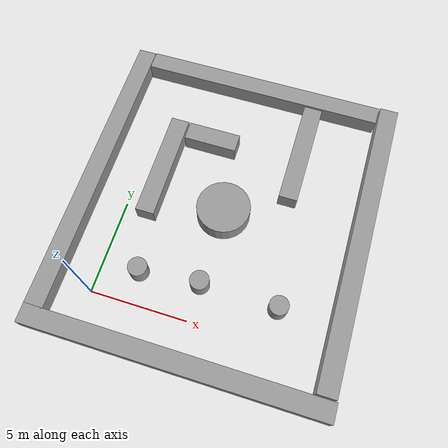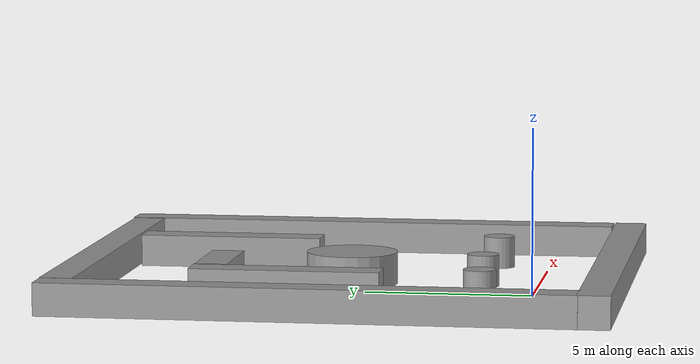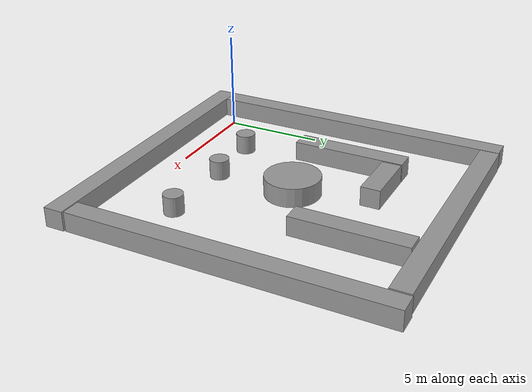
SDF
<?xml version='1.0'?>
<sdf version='1.6'>
  <model name='unit_box.world'>
    <link name='link'>
      <inertial>
        <mass>15.7158</mass>
        <inertia>
          <ixx>2.6193</ixx>
          <ixy>0</ixy>
          <ixz>0</ixz>
          <iyy>318.402</iyy>
          <iyz>0</iyz>
          <izz>318.402</izz>
        </inertia>
        <pose frame=''>0.01 0.01 0 0 -0 0</pose>
      </inertial>
      <self_collide>0</self_collide>
      <enable_wind>0</enable_wind>
      <kinematic>0</kinematic>
      <pose frame=''>4.98854 -2.03239 0 0 -0 0</pose>
      <gravity>1</gravity>
      <visual name='visual'>
        <geometry>
          <box>
            <size>15.5602 1 1</size>
          </box>
        </geometry>
        <material>
          <script>
            <name>Gazebo/Grey</name>
            <uri>file://media/materials/scripts/gazebo.material</uri>
          </script>
          <shader type='vertex'>
            <normal_map>__default__</normal_map>
          </shader>
          <ambient>0.3 0.3 0.3 1</ambient>
          <diffuse>0.7 0.7 0.7 1</diffuse>
          <specular>0.01 0.01 0.01 1</specular>
          <emissive>0 0 0 1</emissive>
        </material>
        <pose frame=''>0 0 0 0 -0 0</pose>
        <transparency>0</transparency>
        <cast_shadows>1</cast_shadows>
      </visual>
      <collision name='collision'>
        <laser_retro>0</laser_retro>
        <max_contacts>10</max_contacts>
        <pose frame=''>0 0 0 0 -0 0</pose>
        <geometry>
          <box>
            <size>15.5602 1 1</size>
          </box>
        </geometry>
        <surface>
          <friction>
            <ode>
              <mu>1</mu>
              <mu2>1</mu2>
              <fdir1>0 0 0</fdir1>
              <slip1>0</slip1>
              <slip2>0</slip2>
            </ode>
            <torsional>
              <coefficient>1</coefficient>
              <patch_radius>0</patch_radius>
              <surface_radius>0</surface_radius>
              <use_patch_radius>1</use_patch_radius>
              <ode>
                <slip>0</slip>
              </ode>
            </torsional>
          </friction>
          <bounce>
            <restitution_coefficient>0</restitution_coefficient>
            <threshold>1e+06</threshold>
          </bounce>
          <contact>
            <collide_without_contact>0</collide_without_contact>
            <collide_without_contact_bitmask>1</collide_without_contact_bitmask>
            <collide_bitmask>1</collide_bitmask>
            <ode>
              <soft_cfm>0</soft_cfm>
              <soft_erp>0.2</soft_erp>
              <kp>1e+13</kp>
              <kd>1</kd>
              <max_vel>0.01</max_vel>
              <min_depth>0</min_depth>
            </ode>
            <bullet>
              <split_impulse>1</split_impulse>
              <split_impulse_penetration_threshold>-0.01</split_impulse_penetration_threshold>
              <soft_cfm>0</soft_cfm>
              <soft_erp>0.2</soft_erp>
              <kp>1e+13</kp>
              <kd>1</kd>
            </bullet>
          </contact>
        </surface>
      </collision>
    </link>
    <link name='link_1'>
      <inertial>
        <mass>16.0639</mass>
        <inertia>
          <ixx>346.777</ixx>
          <ixy>0</ixy>
          <ixz>0</ixz>
          <iyy>2.67731</iyy>
          <iyz>0</iyz>
          <izz>346.777</izz>
        </inertia>
        <pose frame=''>0 0 0 0 -0 0</pose>
      </inertial>
      <pose frame=''>12.2228 6.56839 -0 0 -0 0</pose>
      <self_collide>0</self_collide>
      <enable_wind>0</enable_wind>
      <kinematic>0</kinematic>
      <visual name='visual'>
        <pose frame=''>0 0 0 0 -0 0</pose>
        <geometry>
          <box>
            <size>1 16.0639 1</size>
          </box>
        </geometry>
        <material>
          <lighting>1</lighting>
          <script>
            <uri>file://media/materials/scripts/gazebo.material</uri>
            <name>Gazebo/Grey</name>
          </script>
        </material>
        <transparency>0</transparency>
        <cast_shadows>1</cast_shadows>
      </visual>
      <collision name='collision'>
        <laser_retro>0</laser_retro>
        <max_contacts>10</max_contacts>
        <pose frame=''>0 0 0 0 -0 0</pose>
        <geometry>
          <box>
            <size>1 16.0639 1</size>
          </box>
        </geometry>
        <surface>
          <friction>
            <ode>
              <mu>1</mu>
              <mu2>1</mu2>
              <fdir1>0 0 0</fdir1>
              <slip1>0</slip1>
              <slip2>0</slip2>
            </ode>
            <torsional>
              <coefficient>1</coefficient>
              <patch_radius>0</patch_radius>
              <surface_radius>0</surface_radius>
              <use_patch_radius>1</use_patch_radius>
              <ode>
                <slip>0</slip>
              </ode>
            </torsional>
          </friction>
          <bounce>
            <restitution_coefficient>0</restitution_coefficient>
            <threshold>1e+06</threshold>
          </bounce>
          <contact>
            <collide_without_contact>0</collide_without_contact>
            <collide_without_contact_bitmask>1</collide_without_contact_bitmask>
            <collide_bitmask>1</collide_bitmask>
            <ode>
              <soft_cfm>0</soft_cfm>
              <soft_erp>0.2</soft_erp>
              <kp>1e+13</kp>
              <kd>1</kd>
              <max_vel>0.01</max_vel>
              <min_depth>0</min_depth>
            </ode>
            <bullet>
              <split_impulse>1</split_impulse>
              <split_impulse_penetration_threshold>-0.01</split_impulse_penetration_threshold>
              <soft_cfm>0</soft_cfm>
              <soft_erp>0.2</soft_erp>
              <kp>1e+13</kp>
              <kd>1</kd>
            </bullet>
          </contact>
        </surface>
      </collision>
    </link>
    <link name='link_1_clone'>
      <inertial>
        <mass>16.0639</mass>
        <inertia>
          <ixx>346.777</ixx>
          <ixy>0</ixy>
          <ixz>0</ixz>
          <iyy>2.67731</iyy>
          <iyz>0</iyz>
          <izz>346.777</izz>
        </inertia>
        <pose frame=''>0 0 0 0 -0 0</pose>
      </inertial>
      <pose frame=''>-2.2972 6.45676 -0 0 -0 0</pose>
      <self_collide>0</self_collide>
      <enable_wind>0</enable_wind>
      <kinematic>0</kinematic>
      <visual name='visual'>
        <pose frame=''>0 0 0 0 -0 0</pose>
        <geometry>
          <box>
            <size>1 16.0639 1</size>
          </box>
        </geometry>
        <material>
          <lighting>1</lighting>
          <script>
            <uri>file://media/materials/scripts/gazebo.material</uri>
            <name>Gazebo/Grey</name>
          </script>
          <shader type='pixel'/>
        </material>
        <transparency>0</transparency>
        <cast_shadows>1</cast_shadows>
      </visual>
      <collision name='collision'>
        <laser_retro>0</laser_retro>
        <max_contacts>10</max_contacts>
        <pose frame=''>0 0 0 0 -0 0</pose>
        <geometry>
          <box>
            <size>1 16.0639 1</size>
          </box>
        </geometry>
        <surface>
          <friction>
            <ode>
              <mu>1</mu>
              <mu2>1</mu2>
              <fdir1>0 0 0</fdir1>
              <slip1>0</slip1>
              <slip2>0</slip2>
            </ode>
            <torsional>
              <coefficient>1</coefficient>
              <patch_radius>0</patch_radius>
              <surface_radius>0</surface_radius>
              <use_patch_radius>1</use_patch_radius>
              <ode>
                <slip>0</slip>
              </ode>
            </torsional>
          </friction>
          <bounce>
            <restitution_coefficient>0</restitution_coefficient>
            <threshold>1e+06</threshold>
          </bounce>
          <contact>
            <collide_without_contact>0</collide_without_contact>
            <collide_without_contact_bitmask>1</collide_without_contact_bitmask>
            <collide_bitmask>1</collide_bitmask>
            <ode>
              <soft_cfm>0</soft_cfm>
              <soft_erp>0.2</soft_erp>
              <kp>1e+13</kp>
              <kd>1</kd>
              <max_vel>0.01</max_vel>
              <min_depth>0</min_depth>
            </ode>
            <bullet>
              <split_impulse>1</split_impulse>
              <split_impulse_penetration_threshold>-0.01</split_impulse_penetration_threshold>
              <soft_cfm>0</soft_cfm>
              <soft_erp>0.2</soft_erp>
              <kp>1e+13</kp>
              <kd>1</kd>
            </bullet>
          </contact>
        </surface>
      </collision>
    </link>
    <link name='link_1_clone_0'>
      <inertial>
        <mass>13.4186</mass>
        <inertia>
          <ixx>202.463</ixx>
          <ixy>0</ixy>
          <ixz>0</ixz>
          <iyy>2.23643</iyy>
          <iyz>0</iyz>
          <izz>202.463</izz>
        </inertia>
        <pose frame=''>0 0 0 0 -0 0</pose>
      </inertial>
      <pose frame=''>4.93078 14.0327 -0 -0 -0 -1.56924</pose>
      <self_collide>0</self_collide>
      <enable_wind>0</enable_wind>
      <kinematic>0</kinematic>
      <visual name='visual'>
        <pose frame=''>0 0 0 0 -0 0</pose>
        <geometry>
          <box>
            <size>1 13.4186 1</size>
          </box>
        </geometry>
        <material>
          <lighting>1</lighting>
          <script>
            <uri>file://media/materials/scripts/gazebo.material</uri>
            <name>Gazebo/Grey</name>
          </script>
          <shader type='pixel'/>
        </material>
        <transparency>0</transparency>
        <cast_shadows>1</cast_shadows>
      </visual>
      <collision name='collision'>
        <laser_retro>0</laser_retro>
        <max_contacts>10</max_contacts>
        <pose frame=''>0 0 0 0 -0 0</pose>
        <geometry>
          <box>
            <size>1 13.4186 1</size>
          </box>
        </geometry>
        <surface>
          <friction>
            <ode>
              <mu>1</mu>
              <mu2>1</mu2>
              <fdir1>0 0 0</fdir1>
              <slip1>0</slip1>
              <slip2>0</slip2>
            </ode>
            <torsional>
              <coefficient>1</coefficient>
              <patch_radius>0</patch_radius>
              <surface_radius>0</surface_radius>
              <use_patch_radius>1</use_patch_radius>
              <ode>
                <slip>0</slip>
              </ode>
            </torsional>
          </friction>
          <bounce>
            <restitution_coefficient>0</restitution_coefficient>
            <threshold>1e+06</threshold>
          </bounce>
          <contact>
            <collide_without_contact>0</collide_without_contact>
            <collide_without_contact_bitmask>1</collide_without_contact_bitmask>
            <collide_bitmask>1</collide_bitmask>
            <ode>
              <soft_cfm>0</soft_cfm>
              <soft_erp>0.2</soft_erp>
              <kp>1e+13</kp>
              <kd>1</kd>
              <max_vel>0.01</max_vel>
              <min_depth>0</min_depth>
            </ode>
            <bullet>
              <split_impulse>1</split_impulse>
              <split_impulse_penetration_threshold>-0.01</split_impulse_penetration_threshold>
              <soft_cfm>0</soft_cfm>
              <soft_erp>0.2</soft_erp>
              <kp>1e+13</kp>
              <kd>1</kd>
            </bullet>
          </contact>
        </surface>
      </collision>
    </link>
    <link name='link_2'>
      <inertial>
        <mass>1</mass>
        <inertia>
          <ixx>0.145833</ixx>
          <ixy>0</ixy>
          <ixz>0</ixz>
          <iyy>0.145833</iyy>
          <iyz>0</iyz>
          <izz>0.125</izz>
        </inertia>
      </inertial>
      <pose frame=''>1.82894 1.77618 -0 0 -0 0</pose>
      <self_collide>0</self_collide>
      <enable_wind>0</enable_wind>
      <kinematic>0</kinematic>
      <visual name='visual'>
        <pose frame=''>0 0 0 0 -0 0</pose>
        <geometry>
          <cylinder>
            <radius>0.5</radius>
            <length>1</length>
          </cylinder>
        </geometry>
        <material>
          <lighting>1</lighting>
          <script>
            <uri>file://media/materials/scripts/gazebo.material</uri>
            <name>Gazebo/Grey</name>
          </script>
        </material>
        <transparency>0</transparency>
        <cast_shadows>1</cast_shadows>
      </visual>
      <collision name='collision'>
        <laser_retro>0</laser_retro>
        <max_contacts>10</max_contacts>
        <pose frame=''>0 0 0 0 -0 0</pose>
        <geometry>
          <cylinder>
            <radius>0.5</radius>
            <length>1</length>
          </cylinder>
        </geometry>
        <surface>
          <friction>
            <ode>
              <mu>1</mu>
              <mu2>1</mu2>
              <fdir1>0 0 0</fdir1>
              <slip1>0</slip1>
              <slip2>0</slip2>
            </ode>
            <torsional>
              <coefficient>1</coefficient>
              <patch_radius>0</patch_radius>
              <surface_radius>0</surface_radius>
              <use_patch_radius>1</use_patch_radius>
              <ode>
                <slip>0</slip>
              </ode>
            </torsional>
          </friction>
          <bounce>
            <restitution_coefficient>0</restitution_coefficient>
            <threshold>1e+06</threshold>
          </bounce>
          <contact>
            <collide_without_contact>0</collide_without_contact>
            <collide_without_contact_bitmask>1</collide_without_contact_bitmask>
            <collide_bitmask>1</collide_bitmask>
            <ode>
              <soft_cfm>0</soft_cfm>
              <soft_erp>0.2</soft_erp>
              <kp>1e+13</kp>
              <kd>1</kd>
              <max_vel>0.01</max_vel>
              <min_depth>0</min_depth>
            </ode>
            <bullet>
              <split_impulse>1</split_impulse>
              <split_impulse_penetration_threshold>-0.01</split_impulse_penetration_threshold>
              <soft_cfm>0</soft_cfm>
              <soft_erp>0.2</soft_erp>
              <kp>1e+13</kp>
              <kd>1</kd>
            </bullet>
          </contact>
        </surface>
      </collision>
    </link>
    <link name='link_2_clone'>
      <inertial>
        <mass>1</mass>
        <inertia>
          <ixx>0.145833</ixx>
          <ixy>0</ixy>
          <ixz>0</ixz>
          <iyy>0.145833</iyy>
          <iyz>0</iyz>
          <izz>0.125</izz>
        </inertia>
      </inertial>
      <pose frame=''>5.0065 2.03016 -0 0 -0 0</pose>
      <self_collide>0</self_collide>
      <enable_wind>0</enable_wind>
      <kinematic>0</kinematic>
      <visual name='visual'>
        <pose frame=''>0 0 0 0 -0 0</pose>
        <geometry>
          <cylinder>
            <radius>0.5</radius>
            <length>1</length>
          </cylinder>
        </geometry>
        <material>
          <lighting>1</lighting>
          <script>
            <uri>file://media/materials/scripts/gazebo.material</uri>
            <name>Gazebo/Grey</name>
          </script>
          <shader type='pixel'/>
        </material>
        <transparency>0</transparency>
        <cast_shadows>1</cast_shadows>
      </visual>
      <collision name='collision'>
        <laser_retro>0</laser_retro>
        <max_contacts>10</max_contacts>
        <pose frame=''>0 0 0 0 -0 0</pose>
        <geometry>
          <cylinder>
            <radius>0.5</radius>
            <length>1</length>
          </cylinder>
        </geometry>
        <surface>
          <friction>
            <ode>
              <mu>1</mu>
              <mu2>1</mu2>
              <fdir1>0 0 0</fdir1>
              <slip1>0</slip1>
              <slip2>0</slip2>
            </ode>
            <torsional>
              <coefficient>1</coefficient>
              <patch_radius>0</patch_radius>
              <surface_radius>0</surface_radius>
              <use_patch_radius>1</use_patch_radius>
              <ode>
                <slip>0</slip>
              </ode>
            </torsional>
          </friction>
          <bounce>
            <restitution_coefficient>0</restitution_coefficient>
            <threshold>1e+06</threshold>
          </bounce>
          <contact>
            <collide_without_contact>0</collide_without_contact>
            <collide_without_contact_bitmask>1</collide_without_contact_bitmask>
            <collide_bitmask>1</collide_bitmask>
            <ode>
              <soft_cfm>0</soft_cfm>
              <soft_erp>0.2</soft_erp>
              <kp>1e+13</kp>
              <kd>1</kd>
              <max_vel>0.01</max_vel>
              <min_depth>0</min_depth>
            </ode>
            <bullet>
              <split_impulse>1</split_impulse>
              <split_impulse_penetration_threshold>-0.01</split_impulse_penetration_threshold>
              <soft_cfm>0</soft_cfm>
              <soft_erp>0.2</soft_erp>
              <kp>1e+13</kp>
              <kd>1</kd>
            </bullet>
          </contact>
        </surface>
      </collision>
    </link>
    <link name='link_2_clone_0'>
      <inertial>
        <mass>1</mass>
        <inertia>
          <ixx>0.145833</ixx>
          <ixy>0</ixy>
          <ixz>0</ixz>
          <iyy>0.145833</iyy>
          <iyz>0</iyz>
          <izz>0.125</izz>
        </inertia>
      </inertial>
      <pose frame=''>9.09614 1.96691 -0 0 -0 0</pose>
      <self_collide>0</self_collide>
      <enable_wind>0</enable_wind>
      <kinematic>0</kinematic>
      <visual name='visual'>
        <pose frame=''>0 0 0 0 -0 0</pose>
        <geometry>
          <cylinder>
            <radius>0.5</radius>
            <length>1</length>
          </cylinder>
        </geometry>
        <material>
          <lighting>1</lighting>
          <script>
            <uri>file://media/materials/scripts/gazebo.material</uri>
            <name>Gazebo/Grey</name>
          </script>
          <shader type='pixel'/>
        </material>
        <transparency>0</transparency>
        <cast_shadows>1</cast_shadows>
      </visual>
      <collision name='collision'>
        <laser_retro>0</laser_retro>
        <max_contacts>10</max_contacts>
        <pose frame=''>0 0 0 0 -0 0</pose>
        <geometry>
          <cylinder>
            <radius>0.5</radius>
            <length>1</length>
          </cylinder>
        </geometry>
        <surface>
          <friction>
            <ode>
              <mu>1</mu>
              <mu2>1</mu2>
              <fdir1>0 0 0</fdir1>
              <slip1>0</slip1>
              <slip2>0</slip2>
            </ode>
            <torsional>
              <coefficient>1</coefficient>
              <patch_radius>0</patch_radius>
              <surface_radius>0</surface_radius>
              <use_patch_radius>1</use_patch_radius>
              <ode>
                <slip>0</slip>
              </ode>
            </torsional>
          </friction>
          <bounce>
            <restitution_coefficient>0</restitution_coefficient>
            <threshold>1e+06</threshold>
          </bounce>
          <contact>
            <collide_without_contact>0</collide_without_contact>
            <collide_without_contact_bitmask>1</collide_without_contact_bitmask>
            <collide_bitmask>1</collide_bitmask>
            <ode>
              <soft_cfm>0</soft_cfm>
              <soft_erp>0.2</soft_erp>
              <kp>1e+13</kp>
              <kd>1</kd>
              <max_vel>0.01</max_vel>
              <min_depth>0</min_depth>
            </ode>
            <bullet>
              <split_impulse>1</split_impulse>
              <split_impulse_penetration_threshold>-0.01</split_impulse_penetration_threshold>
              <soft_cfm>0</soft_cfm>
              <soft_erp>0.2</soft_erp>
              <kp>1e+13</kp>
              <kd>1</kd>
            </bullet>
          </contact>
        </surface>
      </collision>
    </link>
    <link name='link_4'>
      <inertial>
        <mass>5.83569</mass>
        <inertia>
          <ixx>17.0476</ixx>
          <ixy>0</ixy>
          <ixz>0</ixz>
          <iyy>0.972615</iyy>
          <iyz>0</iyz>
          <izz>17.0476</izz>
        </inertia>
        <pose frame=''>0 0 0 0 -0 0</pose>
      </inertial>
      <pose frame=''>8.08336 10.5206 -0 0 -0 0</pose>
      <self_collide>0</self_collide>
      <enable_wind>0</enable_wind>
      <kinematic>0</kinematic>
      <visual name='visual'>
        <pose frame=''>0 0 0 0 -0 0</pose>
        <geometry>
          <box>
            <size>1 5.83569 1</size>
          </box>
        </geometry>
        <material>
          <lighting>1</lighting>
          <script>
            <uri>file://media/materials/scripts/gazebo.material</uri>
            <name>Gazebo/Grey</name>
          </script>
        </material>
        <transparency>0</transparency>
        <cast_shadows>1</cast_shadows>
      </visual>
      <collision name='collision'>
        <laser_retro>0</laser_retro>
        <max_contacts>10</max_contacts>
        <pose frame=''>0 0 0 0 -0 0</pose>
        <geometry>
          <box>
            <size>1 5.83569 1</size>
          </box>
        </geometry>
        <surface>
          <friction>
            <ode>
              <mu>1</mu>
              <mu2>1</mu2>
              <fdir1>0 0 0</fdir1>
              <slip1>0</slip1>
              <slip2>0</slip2>
            </ode>
            <torsional>
              <coefficient>1</coefficient>
              <patch_radius>0</patch_radius>
              <surface_radius>0</surface_radius>
              <use_patch_radius>1</use_patch_radius>
              <ode>
                <slip>0</slip>
              </ode>
            </torsional>
          </friction>
          <bounce>
            <restitution_coefficient>0</restitution_coefficient>
            <threshold>1e+06</threshold>
          </bounce>
          <contact>
            <collide_without_contact>0</collide_without_contact>
            <collide_without_contact_bitmask>1</collide_without_contact_bitmask>
            <collide_bitmask>1</collide_bitmask>
            <ode>
              <soft_cfm>0</soft_cfm>
              <soft_erp>0.2</soft_erp>
              <kp>1e+13</kp>
              <kd>1</kd>
              <max_vel>0.01</max_vel>
              <min_depth>0</min_depth>
            </ode>
            <bullet>
              <split_impulse>1</split_impulse>
              <split_impulse_penetration_threshold>-0.01</split_impulse_penetration_threshold>
              <soft_cfm>0</soft_cfm>
              <soft_erp>0.2</soft_erp>
              <kp>1e+13</kp>
              <kd>1</kd>
            </bullet>
          </contact>
        </surface>
      </collision>
    </link>
    <link name='link_4_clone'>
      <inertial>
        <mass>5.83569</mass>
        <inertia>
          <ixx>17.0476</ixx>
          <ixy>0</ixy>
          <ixz>0</ixz>
          <iyy>0.972615</iyy>
          <iyz>0</iyz>
          <izz>17.0476</izz>
        </inertia>
        <pose frame=''>0 0 0 0 -0 0</pose>
      </inertial>
      <pose frame=''>1.11686 7.59971 -0 0 -0 0</pose>
      <self_collide>0</self_collide>
      <enable_wind>0</enable_wind>
      <kinematic>0</kinematic>
      <visual name='visual'>
        <pose frame=''>0 0 0 0 -0 0</pose>
        <geometry>
          <box>
            <size>1 5.83569 1</size>
          </box>
        </geometry>
        <material>
          <lighting>1</lighting>
          <script>
            <uri>file://media/materials/scripts/gazebo.material</uri>
            <name>Gazebo/Grey</name>
          </script>
          <shader type='pixel'/>
        </material>
        <transparency>0</transparency>
        <cast_shadows>1</cast_shadows>
      </visual>
      <collision name='collision'>
        <laser_retro>0</laser_retro>
        <max_contacts>10</max_contacts>
        <pose frame=''>0 0 0 0 -0 0</pose>
        <geometry>
          <box>
            <size>1 5.83569 1</size>
          </box>
        </geometry>
        <surface>
          <friction>
            <ode>
              <mu>1</mu>
              <mu2>1</mu2>
              <fdir1>0 0 0</fdir1>
              <slip1>0</slip1>
              <slip2>0</slip2>
            </ode>
            <torsional>
              <coefficient>1</coefficient>
              <patch_radius>0</patch_radius>
              <surface_radius>0</surface_radius>
              <use_patch_radius>1</use_patch_radius>
              <ode>
                <slip>0</slip>
              </ode>
            </torsional>
          </friction>
          <bounce>
            <restitution_coefficient>0</restitution_coefficient>
            <threshold>1e+06</threshold>
          </bounce>
          <contact>
            <collide_without_contact>0</collide_without_contact>
            <collide_without_contact_bitmask>1</collide_without_contact_bitmask>
            <collide_bitmask>1</collide_bitmask>
            <ode>
              <soft_cfm>0</soft_cfm>
              <soft_erp>0.2</soft_erp>
              <kp>1e+13</kp>
              <kd>1</kd>
              <max_vel>0.01</max_vel>
              <min_depth>0</min_depth>
            </ode>
            <bullet>
              <split_impulse>1</split_impulse>
              <split_impulse_penetration_threshold>-0.01</split_impulse_penetration_threshold>
              <soft_cfm>0</soft_cfm>
              <soft_erp>0.2</soft_erp>
              <kp>1e+13</kp>
              <kd>1</kd>
            </bullet>
          </contact>
        </surface>
      </collision>
    </link>
    <link name='link_5'>
      <inertial>
        <mass>2.89046</mass>
        <inertia>
          <ixx>0.481744</ixx>
          <ixy>0</ixy>
          <ixz>0</ixz>
          <iyy>2.2533</iyy>
          <iyz>0</iyz>
          <izz>2.2533</izz>
        </inertia>
        <pose frame=''>0 0 0 0 -0 0</pose>
      </inertial>
      <pose frame=''>3.15095 10.0112 -0 0 -0 0</pose>
      <self_collide>0</self_collide>
      <enable_wind>0</enable_wind>
      <kinematic>0</kinematic>
      <visual name='visual'>
        <pose frame=''>0 0 0 0 -0 0</pose>
        <geometry>
          <box>
            <size>2.89046 1 1</size>
          </box>
        </geometry>
        <material>
          <lighting>1</lighting>
          <script>
            <uri>file://media/materials/scripts/gazebo.material</uri>
            <name>Gazebo/Grey</name>
          </script>
        </material>
        <transparency>0</transparency>
        <cast_shadows>1</cast_shadows>
      </visual>
      <collision name='collision'>
        <laser_retro>0</laser_retro>
        <max_contacts>10</max_contacts>
        <pose frame=''>0 0 0 0 -0 0</pose>
        <geometry>
          <box>
            <size>2.89046 1 1</size>
          </box>
        </geometry>
        <surface>
          <friction>
            <ode>
              <mu>1</mu>
              <mu2>1</mu2>
              <fdir1>0 0 0</fdir1>
              <slip1>0</slip1>
              <slip2>0</slip2>
            </ode>
            <torsional>
              <coefficient>1</coefficient>
              <patch_radius>0</patch_radius>
              <surface_radius>0</surface_radius>
              <use_patch_radius>1</use_patch_radius>
              <ode>
                <slip>0</slip>
              </ode>
            </torsional>
          </friction>
          <bounce>
            <restitution_coefficient>0</restitution_coefficient>
            <threshold>1e+06</threshold>
          </bounce>
          <contact>
            <collide_without_contact>0</collide_without_contact>
            <collide_without_contact_bitmask>1</collide_without_contact_bitmask>
            <collide_bitmask>1</collide_bitmask>
            <ode>
              <soft_cfm>0</soft_cfm>
              <soft_erp>0.2</soft_erp>
              <kp>1e+13</kp>
              <kd>1</kd>
              <max_vel>0.01</max_vel>
              <min_depth>0</min_depth>
            </ode>
            <bullet>
              <split_impulse>1</split_impulse>
              <split_impulse_penetration_threshold>-0.01</split_impulse_penetration_threshold>
              <soft_cfm>0</soft_cfm>
              <soft_erp>0.2</soft_erp>
              <kp>1e+13</kp>
              <kd>1</kd>
            </bullet>
          </contact>
        </surface>
      </collision>
    </link>
    <link name='link_6'>
      <inertial>
        <mass>8.11867</mass>
        <inertia>
          <ixx>4.79611</ixx>
          <ixy>0</ixy>
          <ixz>0</ixz>
          <iyy>4.79611</iyy>
          <iyz>0</iyz>
          <izz>8.23912</izz>
        </inertia>
        <pose frame=''>0 0 0 0 -0 0</pose>
      </inertial>
      <pose frame=''>4.98705 6.1422 -0 0 -0 0</pose>
      <self_collide>0</self_collide>
      <enable_wind>0</enable_wind>
      <kinematic>0</kinematic>
      <visual name='visual'>
        <pose frame=''>0 0 0 0 -0 0</pose>
        <geometry>
          <cylinder>
            <radius>1.42467</radius>
            <length>1</length>
          </cylinder>
        </geometry>
        <material>
          <lighting>1</lighting>
          <script>
            <uri>file://media/materials/scripts/gazebo.material</uri>
            <name>Gazebo/Grey</name>
          </script>
        </material>
        <transparency>0</transparency>
        <cast_shadows>1</cast_shadows>
      </visual>
      <collision name='collision'>
        <laser_retro>0</laser_retro>
        <max_contacts>10</max_contacts>
        <pose frame=''>0 0 0 0 -0 0</pose>
        <geometry>
          <cylinder>
            <radius>1.42467</radius>
            <length>1</length>
          </cylinder>
        </geometry>
        <surface>
          <friction>
            <ode>
              <mu>1</mu>
              <mu2>1</mu2>
              <fdir1>0 0 0</fdir1>
              <slip1>0</slip1>
              <slip2>0</slip2>
            </ode>
            <torsional>
              <coefficient>1</coefficient>
              <patch_radius>0</patch_radius>
              <surface_radius>0</surface_radius>
              <use_patch_radius>1</use_patch_radius>
              <ode>
                <slip>0</slip>
              </ode>
            </torsional>
          </friction>
          <bounce>
            <restitution_coefficient>0</restitution_coefficient>
            <threshold>1e+06</threshold>
          </bounce>
          <contact>
            <collide_without_contact>0</collide_without_contact>
            <collide_without_contact_bitmask>1</collide_without_contact_bitmask>
            <collide_bitmask>1</collide_bitmask>
            <ode>
              <soft_cfm>0</soft_cfm>
              <soft_erp>0.2</soft_erp>
              <kp>1e+13</kp>
              <kd>1</kd>
              <max_vel>0.01</max_vel>
              <min_depth>0</min_depth>
            </ode>
            <bullet>
              <split_impulse>1</split_impulse>
              <split_impulse_penetration_threshold>-0.01</split_impulse_penetration_threshold>
              <soft_cfm>0</soft_cfm>
              <soft_erp>0.2</soft_erp>
              <kp>1e+13</kp>
              <kd>1</kd>
            </bullet>
          </contact>
        </surface>
      </collision>
    </link>
    <static>0</static>
    <allow_auto_disable>1</allow_auto_disable>
  </model>
</sdf>
